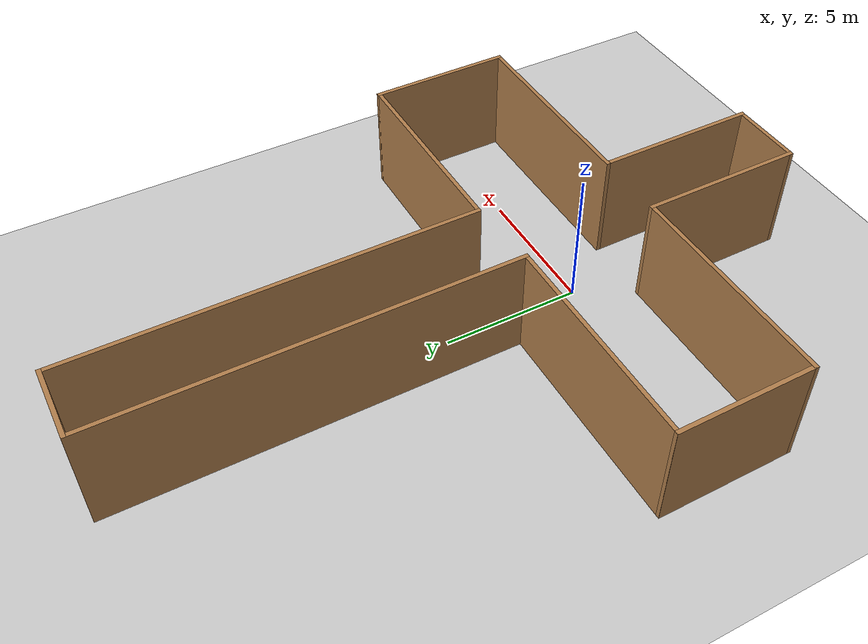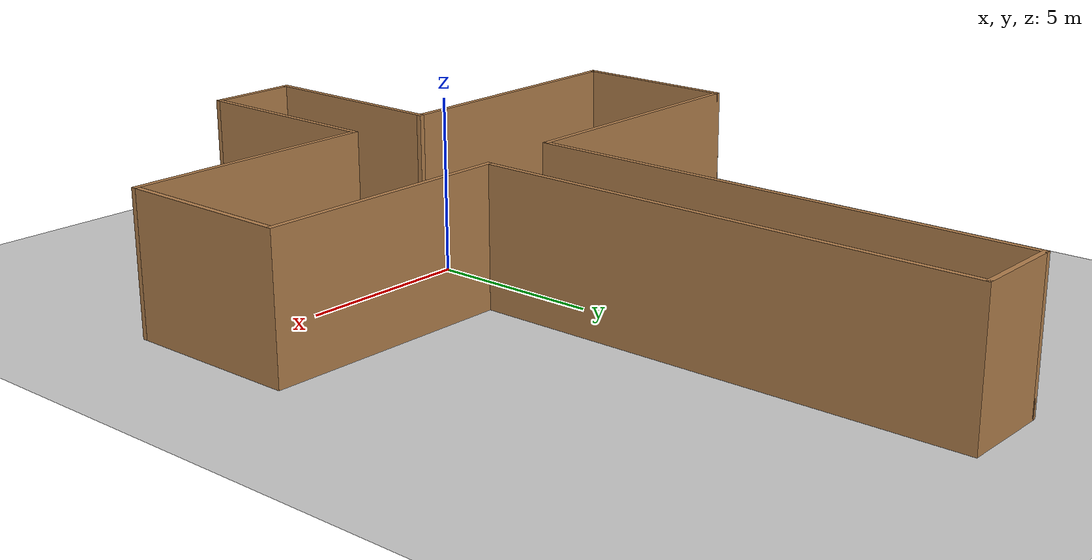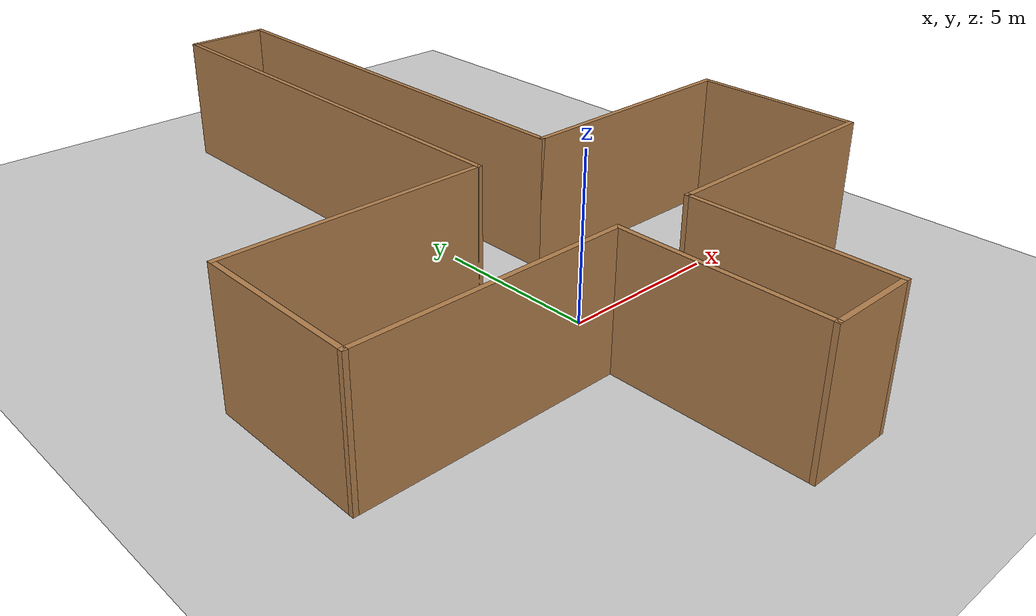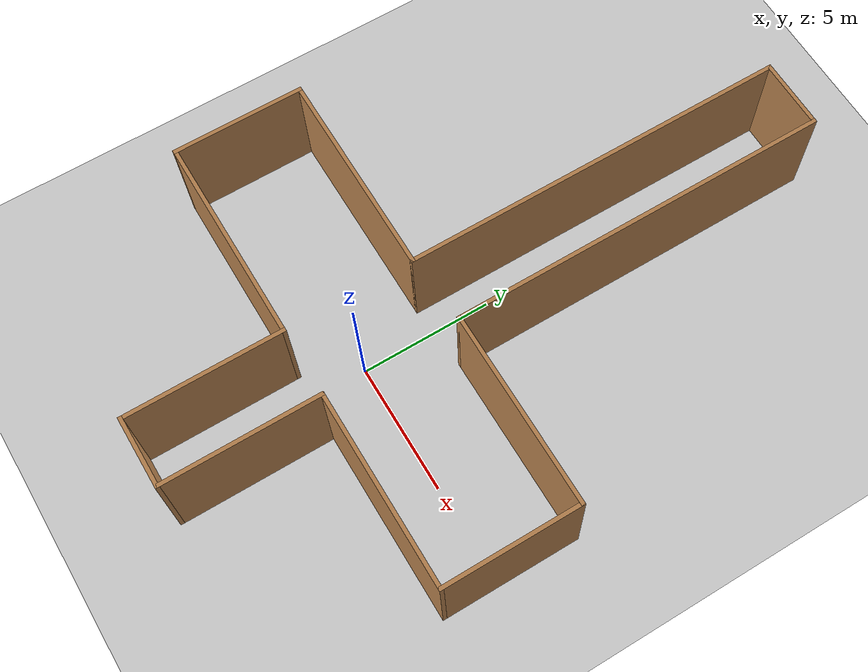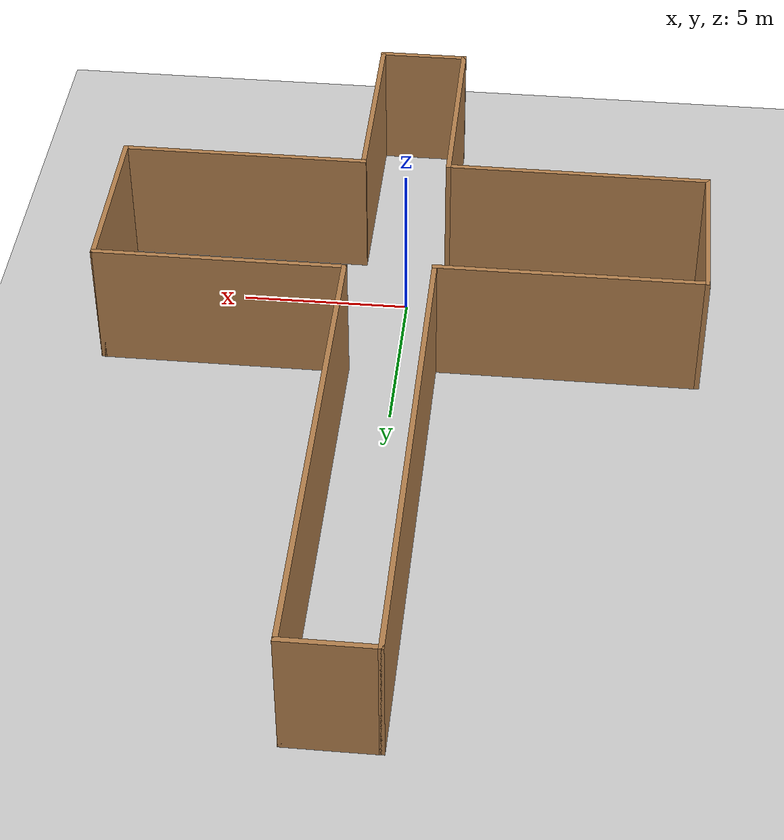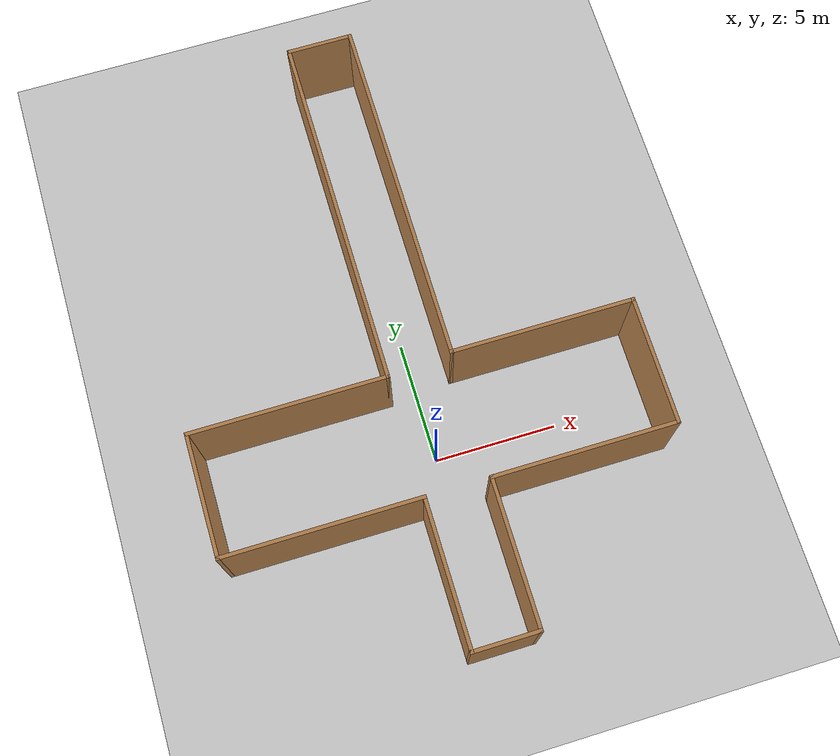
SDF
<sdf version="1.7">
 <world name="default">
  <plugin name="gazebo_ros_state" filename="libgazebo_ros_state.so">
   <ros>
    <namespace>/plug</namespace>
    <argument>model_states:=model_states_plug</argument>
    <argument>link_states:=link_states_plug</argument>
   </ros>
   <update_rate>100.0</update_rate>
  </plugin>
  <plugin name="disable_physics" filename="libdisable_physics.so"/>
  <light name="sun" type="directional">
   <pose>0 0 10 0 -0 0</pose>
   <diffuse>0.8 0.8 0.8 1</diffuse>
   <specular>0.2 0.2 0.2 1</specular>
   <attenuation>
    <range>1000</range>
    <constant>0.9</constant>
    <linear>0.01</linear>
    <quadratic>0.001</quadratic>
   </attenuation>
   <direction>-0.5 0.1 -0.9</direction>
   <spot><inner_angle>0</inner_angle><outer_angle>0</outer_angle><falloff>0</falloff></spot>
  </light>
  <model name="ground_plane">
   <static>1</static>
   <link name="link">
    <collision name="collision">
     <geometry><plane><normal>0 0 1</normal><size>100 100</size></plane></geometry>
     <surface>
      <contact><collide_bitmask>65535</collide_bitmask></contact>
      <friction><ode><mu>100</mu><mu2>50</mu2></ode></friction>
     </surface>
    </collision>
    <visual name="visual">
     <cast_shadows>0</cast_shadows>
     <geometry><plane><normal>0 0 1</normal><size>100 100</size></plane></geometry>
     <material>
      <script><uri>file://media/materials/scripts/gazebo.material</uri><name>Gazebo/Grey</name></script>
     </material>
    </visual>
   </link>
  </model>
  <gravity>0 0 -9.8</gravity>
  <magnetic_field>6e-06 2.3e-05 -4.2e-05</magnetic_field>
  <atmosphere type="adiabatic"/>
  <physics type="ode">
   <max_step_size>0.01</max_step_size>
   <real_time_factor>1</real_time_factor>
   <real_time_update_rate>100</real_time_update_rate>
  </physics>
  <scene><ambient>0.4 0.4 0.4 1</ambient><background>0.7 0.7 0.7 1</background><shadows>1</shadows></scene>
  <audio><device>default</device></audio>
  <spherical_coordinates>
   <surface_model>EARTH_WGS84</surface_model>
   <latitude_deg>0</latitude_deg>
   <longitude_deg>0</longitude_deg>
   <elevation>0</elevation>
   <heading_deg>0</heading_deg>
  </spherical_coordinates>
  <model name="static_uncertainty_test_wall2">
   <link name="Wall_0">
    <pose>-1.05 -9.725 0 0 -0 1.5708</pose>
    <inertial>
     <mass>1</mass>
     <inertia><ixx>1</ixx><ixy>0</ixy><ixz>0</ixz><iyy>1</iyy><iyz>0</iyz><izz>1</izz></inertia>
    </inertial>
    <visual name="Wall_0_Visual">
     <pose>0 0 1.25 0 -0 0</pose>
     <geometry><box><size>6 0.15 5.5</size></box></geometry>
     <material>
      <script><uri>file://media/materials/scripts/gazebo.material</uri><name>Gazebo/Wood</name></script>
      <ambient>1 1 1 1</ambient>
      <shader type="pixel"><normal_map>__default__</normal_map></shader>
      <diffuse>1 1 1 1</diffuse>
      <specular>0.2 0.2 0.2 1</specular>
      <emissive>0 0 0 1</emissive>
     </material>
     <meta><layer>0</layer></meta>
    </visual>
    <collision name="Wall_0_Collision">
     <pose>0 0 1.25 0 -0 0</pose>
     <geometry><box><size>6 0.15 5.5</size></box></geometry>
     <surface>
      <friction>
       <ode><mu>1</mu><mu2>1</mu2><fdir1>0 0 0</fdir1><slip1>0</slip1><slip2>0</slip2></ode>
       <torsional>
        <coefficient>1</coefficient>
        <patch_radius>0</patch_radius>
        <surface_radius>0</surface_radius>
        <use_patch_radius>1</use_patch_radius>
        <ode><slip>0</slip></ode>
       </torsional>
      </friction>
      <bounce><restitution_coefficient>0</restitution_coefficient><threshold>1e+06</threshold></bounce>
      <contact>
       <collide_without_contact>0</collide_without_contact>
       <collide_without_contact_bitmask>1</collide_without_contact_bitmask>
       <collide_bitmask>1</collide_bitmask>
       <ode>
        <soft_cfm>0</soft_cfm>
        <soft_erp>0.2</soft_erp>
        <kp>1e+13</kp>
        <kd>1</kd>
        <max_vel>0.01</max_vel>
        <min_depth>0</min_depth>
       </ode>
       <bullet>
        <split_impulse>1</split_impulse>
        <split_impulse_penetration_threshold>-0.01</split_impulse_penetration_threshold>
        <soft_cfm>0</soft_cfm>
        <soft_erp>0.2</soft_erp>
        <kp>1e+13</kp>
        <kd>1</kd>
       </bullet>
      </contact>
     </surface>
    </collision>
   </link>
   <link name="Wall_1">
    <pose>-4.975 -6.8 0 0 -0 3.14159</pose>
    <inertial>
     <mass>1</mass>
     <inertia><ixx>1</ixx><ixy>0</ixy><ixz>0</ixz><iyy>1</iyy><iyz>0</iyz><izz>1</izz></inertia>
    </inertial>
    <visual name="Wall_1_Visual">
     <pose>0 0 1.25 0 -0 0</pose>
     <geometry><box><size>8 0.15 5.5</size></box></geometry>
     <material>
      <script><uri>file://media/materials/scripts/gazebo.material</uri><name>Gazebo/Wood</name></script>
      <ambient>1 1 1 1</ambient>
      <shader type="pixel"><normal_map>__default__</normal_map></shader>
      <diffuse>1 1 1 1</diffuse>
      <specular>0.2 0.2 0.2 1</specular>
      <emissive>0 0 0 1</emissive>
     </material>
     <meta><layer>0</layer></meta>
    </visual>
    <collision name="Wall_1_Collision">
     <pose>0 0 1.25 0 -0 0</pose>
     <geometry><box><size>8 0.15 5.5</size></box></geometry>
     <surface>
      <friction>
       <ode><mu>1</mu><mu2>1</mu2><fdir1>0 0 0</fdir1><slip1>0</slip1><slip2>0</slip2></ode>
       <torsional>
        <coefficient>1</coefficient>
        <patch_radius>0</patch_radius>
        <surface_radius>0</surface_radius>
        <use_patch_radius>1</use_patch_radius>
        <ode><slip>0</slip></ode>
       </torsional>
      </friction>
      <bounce><restitution_coefficient>0</restitution_coefficient><threshold>1e+06</threshold></bounce>
      <contact>
       <collide_without_contact>0</collide_without_contact>
       <collide_without_contact_bitmask>1</collide_without_contact_bitmask>
       <collide_bitmask>1</collide_bitmask>
       <ode>
        <soft_cfm>0</soft_cfm>
        <soft_erp>0.2</soft_erp>
        <kp>1e+13</kp>
        <kd>1</kd>
        <max_vel>0.01</max_vel>
        <min_depth>0</min_depth>
       </ode>
       <bullet>
        <split_impulse>1</split_impulse>
        <split_impulse_penetration_threshold>-0.01</split_impulse_penetration_threshold>
        <soft_cfm>0</soft_cfm>
        <soft_erp>0.2</soft_erp>
        <kp>1e+13</kp>
        <kd>1</kd>
       </bullet>
      </contact>
     </surface>
    </collision>
   </link>
   <link name="Wall_10">
    <pose>1.55 -9.725 0 0 0 -1.5708</pose>
    <inertial>
     <mass>1</mass>
     <inertia><ixx>1</ixx><ixy>0</ixy><ixz>0</ixz><iyy>1</iyy><iyz>0</iyz><izz>1</izz></inertia>
    </inertial>
    <visual name="Wall_10_Visual">
     <pose>0 0 1.25 0 -0 0</pose>
     <geometry><box><size>6 0.15 5.5</size></box></geometry>
     <material>
      <script><uri>file://media/materials/scripts/gazebo.material</uri><name>Gazebo/Wood</name></script>
      <ambient>1 1 1 1</ambient>
      <shader type="pixel"><normal_map>__default__</normal_map></shader>
      <diffuse>1 1 1 1</diffuse>
      <specular>0.2 0.2 0.2 1</specular>
      <emissive>0 0 0 1</emissive>
     </material>
     <meta><layer>0</layer></meta>
    </visual>
    <collision name="Wall_10_Collision">
     <pose>0 0 1.25 0 -0 0</pose>
     <geometry><box><size>6 0.15 5.5</size></box></geometry>
     <surface>
      <friction>
       <ode><mu>1</mu><mu2>1</mu2><fdir1>0 0 0</fdir1><slip1>0</slip1><slip2>0</slip2></ode>
       <torsional>
        <coefficient>1</coefficient>
        <patch_radius>0</patch_radius>
        <surface_radius>0</surface_radius>
        <use_patch_radius>1</use_patch_radius>
        <ode><slip>0</slip></ode>
       </torsional>
      </friction>
      <bounce><restitution_coefficient>0</restitution_coefficient><threshold>1e+06</threshold></bounce>
      <contact>
       <collide_without_contact>0</collide_without_contact>
       <collide_without_contact_bitmask>1</collide_without_contact_bitmask>
       <collide_bitmask>1</collide_bitmask>
       <ode>
        <soft_cfm>0</soft_cfm>
        <soft_erp>0.2</soft_erp>
        <kp>1e+13</kp>
        <kd>1</kd>
        <max_vel>0.01</max_vel>
        <min_depth>0</min_depth>
       </ode>
       <bullet>
        <split_impulse>1</split_impulse>
        <split_impulse_penetration_threshold>-0.01</split_impulse_penetration_threshold>
        <soft_cfm>0</soft_cfm>
        <soft_erp>0.2</soft_erp>
        <kp>1e+13</kp>
        <kd>1</kd>
       </bullet>
      </contact>
     </surface>
    </collision>
   </link>
   <link name="Wall_11">
    <pose>0.25 -12.65 0 0 0 -3.14159</pose>
    <inertial>
     <mass>1</mass>
     <inertia><ixx>1</ixx><ixy>0</ixy><ixz>0</ixz><iyy>1</iyy><iyz>0</iyz><izz>1</izz></inertia>
    </inertial>
    <visual name="Wall_11_Visual">
     <pose>0 0 1.25 0 -0 0</pose>
     <geometry><box><size>2.75 0.15 5.5</size></box></geometry>
     <material>
      <script><uri>file://media/materials/scripts/gazebo.material</uri><name>Gazebo/Wood</name></script>
      <ambient>1 1 1 1</ambient>
      <shader type="pixel"><normal_map>__default__</normal_map></shader>
      <diffuse>1 1 1 1</diffuse>
      <specular>0.2 0.2 0.2 1</specular>
      <emissive>0 0 0 1</emissive>
     </material>
     <meta><layer>0</layer></meta>
    </visual>
    <collision name="Wall_11_Collision">
     <pose>0 0 1.25 0 -0 0</pose>
     <geometry><box><size>2.75 0.15 5.5</size></box></geometry>
     <surface>
      <friction>
       <ode><mu>1</mu><mu2>1</mu2><fdir1>0 0 0</fdir1><slip1>0</slip1><slip2>0</slip2></ode>
       <torsional>
        <coefficient>1</coefficient>
        <patch_radius>0</patch_radius>
        <surface_radius>0</surface_radius>
        <use_patch_radius>1</use_patch_radius>
        <ode><slip>0</slip></ode>
       </torsional>
      </friction>
      <bounce><restitution_coefficient>0</restitution_coefficient><threshold>1e+06</threshold></bounce>
      <contact>
       <collide_without_contact>0</collide_without_contact>
       <collide_without_contact_bitmask>1</collide_without_contact_bitmask>
       <collide_bitmask>1</collide_bitmask>
       <ode>
        <soft_cfm>0</soft_cfm>
        <soft_erp>0.2</soft_erp>
        <kp>1e+13</kp>
        <kd>1</kd>
        <max_vel>0.01</max_vel>
        <min_depth>0</min_depth>
       </ode>
       <bullet>
        <split_impulse>1</split_impulse>
        <split_impulse_penetration_threshold>-0.01</split_impulse_penetration_threshold>
        <soft_cfm>0</soft_cfm>
        <soft_erp>0.2</soft_erp>
        <kp>1e+13</kp>
        <kd>1</kd>
       </bullet>
      </contact>
     </surface>
    </collision>
   </link>
   <link name="Wall_2">
    <pose>-8.9 -4.375 0 0 -0 1.5708</pose>
    <inertial>
     <mass>1</mass>
     <inertia><ixx>1</ixx><ixy>0</ixy><ixz>0</ixz><iyy>1</iyy><iyz>0</iyz><izz>1</izz></inertia>
    </inertial>
    <visual name="Wall_2_Visual">
     <pose>0 0 1.25 0 -0 0</pose>
     <geometry><box><size>5 0.15 5.5</size></box></geometry>
     <material>
      <script><uri>file://media/materials/scripts/gazebo.material</uri><name>Gazebo/Wood</name></script>
      <ambient>1 1 1 1</ambient>
      <shader type="pixel"><normal_map>__default__</normal_map></shader>
      <diffuse>1 1 1 1</diffuse>
      <specular>0.2 0.2 0.2 1</specular>
      <emissive>0 0 0 1</emissive>
     </material>
     <meta><layer>0</layer></meta>
    </visual>
    <collision name="Wall_2_Collision">
     <pose>0 0 1.25 0 -0 0</pose>
     <geometry><box><size>5 0.15 5.5</size></box></geometry>
     <surface>
      <friction>
       <ode><mu>1</mu><mu2>1</mu2><fdir1>0 0 0</fdir1><slip1>0</slip1><slip2>0</slip2></ode>
       <torsional>
        <coefficient>1</coefficient>
        <patch_radius>0</patch_radius>
        <surface_radius>0</surface_radius>
        <use_patch_radius>1</use_patch_radius>
        <ode><slip>0</slip></ode>
       </torsional>
      </friction>
      <bounce><restitution_coefficient>0</restitution_coefficient><threshold>1e+06</threshold></bounce>
      <contact>
       <collide_without_contact>0</collide_without_contact>
       <collide_without_contact_bitmask>1</collide_without_contact_bitmask>
       <collide_bitmask>1</collide_bitmask>
       <ode>
        <soft_cfm>0</soft_cfm>
        <soft_erp>0.2</soft_erp>
        <kp>1e+13</kp>
        <kd>1</kd>
        <max_vel>0.01</max_vel>
        <min_depth>0</min_depth>
       </ode>
       <bullet>
        <split_impulse>1</split_impulse>
        <split_impulse_penetration_threshold>-0.01</split_impulse_penetration_threshold>
        <soft_cfm>0</soft_cfm>
        <soft_erp>0.2</soft_erp>
        <kp>1e+13</kp>
        <kd>1</kd>
       </bullet>
      </contact>
     </surface>
    </collision>
   </link>
   <link name="Wall_3">
    <pose>-4.975 -1.95 0 0 -0 0</pose>
    <inertial>
     <mass>1</mass>
     <inertia><ixx>1</ixx><ixy>0</ixy><ixz>0</ixz><iyy>1</iyy><iyz>0</iyz><izz>1</izz></inertia>
    </inertial>
    <visual name="Wall_3_Visual">
     <pose>0 0 1.25 0 -0 0</pose>
     <geometry><box><size>8 0.15 5.5</size></box></geometry>
     <material>
      <script><uri>file://media/materials/scripts/gazebo.material</uri><name>Gazebo/Wood</name></script>
      <ambient>1 1 1 1</ambient>
      <shader type="pixel"><normal_map>__default__</normal_map></shader>
      <diffuse>1 1 1 1</diffuse>
      <specular>0.2 0.2 0.2 1</specular>
      <emissive>0 0 0 1</emissive>
     </material>
     <meta><layer>0</layer></meta>
    </visual>
    <collision name="Wall_3_Collision">
     <pose>0 0 1.25 0 -0 0</pose>
     <geometry><box><size>8 0.15 5.5</size></box></geometry>
     <surface>
      <friction>
       <ode><mu>1</mu><mu2>1</mu2><fdir1>0 0 0</fdir1><slip1>0</slip1><slip2>0</slip2></ode>
       <torsional>
        <coefficient>1</coefficient>
        <patch_radius>0</patch_radius>
        <surface_radius>0</surface_radius>
        <use_patch_radius>1</use_patch_radius>
        <ode><slip>0</slip></ode>
       </torsional>
      </friction>
      <bounce><restitution_coefficient>0</restitution_coefficient><threshold>1e+06</threshold></bounce>
      <contact>
       <collide_without_contact>0</collide_without_contact>
       <collide_without_contact_bitmask>1</collide_without_contact_bitmask>
       <collide_bitmask>1</collide_bitmask>
       <ode>
        <soft_cfm>0</soft_cfm>
        <soft_erp>0.2</soft_erp>
        <kp>1e+13</kp>
        <kd>1</kd>
        <max_vel>0.01</max_vel>
        <min_depth>0</min_depth>
       </ode>
       <bullet>
        <split_impulse>1</split_impulse>
        <split_impulse_penetration_threshold>-0.01</split_impulse_penetration_threshold>
        <soft_cfm>0</soft_cfm>
        <soft_erp>0.2</soft_erp>
        <kp>1e+13</kp>
        <kd>1</kd>
       </bullet>
      </contact>
     </surface>
    </collision>
   </link>
   <link name="Wall_4">
    <pose>-1.05 5.35 0 0 -0 1.5708</pose>
    <inertial>
     <mass>1</mass>
     <inertia><ixx>1</ixx><ixy>0</ixy><ixz>0</ixz><iyy>1</iyy><iyz>0</iyz><izz>1</izz></inertia>
    </inertial>
    <visual name="Wall_4_Visual">
     <pose>0 0 1.25 0 -0 0</pose>
     <geometry><box><size>14.75 0.15 5.5</size></box></geometry>
     <material>
      <script><uri>file://media/materials/scripts/gazebo.material</uri><name>Gazebo/Wood</name></script>
      <ambient>1 1 1 1</ambient>
      <shader type="pixel"><normal_map>__default__</normal_map></shader>
      <diffuse>1 1 1 1</diffuse>
      <specular>0.2 0.2 0.2 1</specular>
      <emissive>0 0 0 1</emissive>
     </material>
     <meta><layer>0</layer></meta>
    </visual>
    <collision name="Wall_4_Collision">
     <pose>0 0 1.25 0 -0 0</pose>
     <geometry><box><size>14.75 0.15 5.5</size></box></geometry>
     <surface>
      <friction>
       <ode><mu>1</mu><mu2>1</mu2><fdir1>0 0 0</fdir1><slip1>0</slip1><slip2>0</slip2></ode>
       <torsional>
        <coefficient>1</coefficient>
        <patch_radius>0</patch_radius>
        <surface_radius>0</surface_radius>
        <use_patch_radius>1</use_patch_radius>
        <ode><slip>0</slip></ode>
       </torsional>
      </friction>
      <bounce><restitution_coefficient>0</restitution_coefficient><threshold>1e+06</threshold></bounce>
      <contact>
       <collide_without_contact>0</collide_without_contact>
       <collide_without_contact_bitmask>1</collide_without_contact_bitmask>
       <collide_bitmask>1</collide_bitmask>
       <ode>
        <soft_cfm>0</soft_cfm>
        <soft_erp>0.2</soft_erp>
        <kp>1e+13</kp>
        <kd>1</kd>
        <max_vel>0.01</max_vel>
        <min_depth>0</min_depth>
       </ode>
       <bullet>
        <split_impulse>1</split_impulse>
        <split_impulse_penetration_threshold>-0.01</split_impulse_penetration_threshold>
        <soft_cfm>0</soft_cfm>
        <soft_erp>0.2</soft_erp>
        <kp>1e+13</kp>
        <kd>1</kd>
       </bullet>
      </contact>
     </surface>
    </collision>
   </link>
   <link name="Wall_5">
    <pose>0.25 12.65 0 0 -0 0</pose>
    <inertial>
     <mass>1</mass>
     <inertia><ixx>1</ixx><ixy>0</ixy><ixz>0</ixz><iyy>1</iyy><iyz>0</iyz><izz>1</izz></inertia>
    </inertial>
    <visual name="Wall_5_Visual">
     <pose>0 0 1.25 0 -0 0</pose>
     <geometry><box><size>2.75 0.15 5.5</size></box></geometry>
     <material>
      <script><uri>file://media/materials/scripts/gazebo.material</uri><name>Gazebo/Wood</name></script>
      <ambient>1 1 1 1</ambient>
      <shader type="pixel"><normal_map>__default__</normal_map></shader>
      <diffuse>1 1 1 1</diffuse>
      <specular>0.2 0.2 0.2 1</specular>
      <emissive>0 0 0 1</emissive>
     </material>
     <meta><layer>0</layer></meta>
    </visual>
    <collision name="Wall_5_Collision">
     <pose>0 0 1.25 0 -0 0</pose>
     <geometry><box><size>2.75 0.15 5.5</size></box></geometry>
     <surface>
      <friction>
       <ode><mu>1</mu><mu2>1</mu2><fdir1>0 0 0</fdir1><slip1>0</slip1><slip2>0</slip2></ode>
       <torsional>
        <coefficient>1</coefficient>
        <patch_radius>0</patch_radius>
        <surface_radius>0</surface_radius>
        <use_patch_radius>1</use_patch_radius>
        <ode><slip>0</slip></ode>
       </torsional>
      </friction>
      <bounce><restitution_coefficient>0</restitution_coefficient><threshold>1e+06</threshold></bounce>
      <contact>
       <collide_without_contact>0</collide_without_contact>
       <collide_without_contact_bitmask>1</collide_without_contact_bitmask>
       <collide_bitmask>1</collide_bitmask>
       <ode>
        <soft_cfm>0</soft_cfm>
        <soft_erp>0.2</soft_erp>
        <kp>1e+13</kp>
        <kd>1</kd>
        <max_vel>0.01</max_vel>
        <min_depth>0</min_depth>
       </ode>
       <bullet>
        <split_impulse>1</split_impulse>
        <split_impulse_penetration_threshold>-0.01</split_impulse_penetration_threshold>
        <soft_cfm>0</soft_cfm>
        <soft_erp>0.2</soft_erp>
        <kp>1e+13</kp>
        <kd>1</kd>
       </bullet>
      </contact>
     </surface>
    </collision>
   </link>
   <link name="Wall_6">
    <pose>1.55 5.475 0 0 0 -1.5708</pose>
    <inertial>
     <mass>1</mass>
     <inertia><ixx>1</ixx><ixy>0</ixy><ixz>0</ixz><iyy>1</iyy><iyz>0</iyz><izz>1</izz></inertia>
    </inertial>
    <visual name="Wall_6_Visual">
     <pose>0 0 1.25 0 -0 0</pose>
     <geometry><box><size>14.5 0.15 5.5</size></box></geometry>
     <material>
      <script><uri>file://media/materials/scripts/gazebo.material</uri><name>Gazebo/Wood</name></script>
      <ambient>1 1 1 1</ambient>
      <shader type="pixel"><normal_map>__default__</normal_map></shader>
      <diffuse>1 1 1 1</diffuse>
      <specular>0.2 0.2 0.2 1</specular>
      <emissive>0 0 0 1</emissive>
     </material>
     <meta><layer>0</layer></meta>
    </visual>
    <collision name="Wall_6_Collision">
     <pose>0 0 1.25 0 -0 0</pose>
     <geometry><box><size>14.5 0.15 5.5</size></box></geometry>
     <surface>
      <friction>
       <ode><mu>1</mu><mu2>1</mu2><fdir1>0 0 0</fdir1><slip1>0</slip1><slip2>0</slip2></ode>
       <torsional>
        <coefficient>1</coefficient>
        <patch_radius>0</patch_radius>
        <surface_radius>0</surface_radius>
        <use_patch_radius>1</use_patch_radius>
        <ode><slip>0</slip></ode>
       </torsional>
      </friction>
      <bounce><restitution_coefficient>0</restitution_coefficient><threshold>1e+06</threshold></bounce>
      <contact>
       <collide_without_contact>0</collide_without_contact>
       <collide_without_contact_bitmask>1</collide_without_contact_bitmask>
       <collide_bitmask>1</collide_bitmask>
       <ode>
        <soft_cfm>0</soft_cfm>
        <soft_erp>0.2</soft_erp>
        <kp>1e+13</kp>
        <kd>1</kd>
        <max_vel>0.01</max_vel>
        <min_depth>0</min_depth>
       </ode>
       <bullet>
        <split_impulse>1</split_impulse>
        <split_impulse_penetration_threshold>-0.01</split_impulse_penetration_threshold>
        <soft_cfm>0</soft_cfm>
        <soft_erp>0.2</soft_erp>
        <kp>1e+13</kp>
        <kd>1</kd>
       </bullet>
      </contact>
     </surface>
    </collision>
   </link>
   <link name="Wall_7">
    <pose>5.225 -1.7 0 0 -0 0</pose>
    <inertial>
     <mass>1</mass>
     <inertia><ixx>1</ixx><ixy>0</ixy><ixz>0</ixz><iyy>1</iyy><iyz>0</iyz><izz>1</izz></inertia>
    </inertial>
    <visual name="Wall_7_Visual">
     <pose>0 0 1.25 0 -0 0</pose>
     <geometry><box><size>7.5 0.15 5.5</size></box></geometry>
     <material>
      <script><uri>file://media/materials/scripts/gazebo.material</uri><name>Gazebo/Wood</name></script>
      <ambient>1 1 1 1</ambient>
      <shader type="pixel"><normal_map>__default__</normal_map></shader>
      <diffuse>1 1 1 1</diffuse>
      <specular>0.2 0.2 0.2 1</specular>
      <emissive>0 0 0 1</emissive>
     </material>
     <meta><layer>0</layer></meta>
    </visual>
    <collision name="Wall_7_Collision">
     <pose>0 0 1.25 0 -0 0</pose>
     <geometry><box><size>7.5 0.15 5.5</size></box></geometry>
     <surface>
      <friction>
       <ode><mu>1</mu><mu2>1</mu2><fdir1>0 0 0</fdir1><slip1>0</slip1><slip2>0</slip2></ode>
       <torsional>
        <coefficient>1</coefficient>
        <patch_radius>0</patch_radius>
        <surface_radius>0</surface_radius>
        <use_patch_radius>1</use_patch_radius>
        <ode><slip>0</slip></ode>
       </torsional>
      </friction>
      <bounce><restitution_coefficient>0</restitution_coefficient><threshold>1e+06</threshold></bounce>
      <contact>
       <collide_without_contact>0</collide_without_contact>
       <collide_without_contact_bitmask>1</collide_without_contact_bitmask>
       <collide_bitmask>1</collide_bitmask>
       <ode>
        <soft_cfm>0</soft_cfm>
        <soft_erp>0.2</soft_erp>
        <kp>1e+13</kp>
        <kd>1</kd>
        <max_vel>0.01</max_vel>
        <min_depth>0</min_depth>
       </ode>
       <bullet>
        <split_impulse>1</split_impulse>
        <split_impulse_penetration_threshold>-0.01</split_impulse_penetration_threshold>
        <soft_cfm>0</soft_cfm>
        <soft_erp>0.2</soft_erp>
        <kp>1e+13</kp>
        <kd>1</kd>
       </bullet>
      </contact>
     </surface>
    </collision>
   </link>
   <link name="Wall_8">
    <pose>8.9 -4.25 0 0 0 -1.5708</pose>
    <inertial>
     <mass>1</mass>
     <inertia><ixx>1</ixx><ixy>0</ixy><ixz>0</ixz><iyy>1</iyy><iyz>0</iyz><izz>1</izz></inertia>
    </inertial>
    <visual name="Wall_8_Visual">
     <pose>0 0 1.25 0 -0 0</pose>
     <geometry><box><size>5.25 0.15 5.5</size></box></geometry>
     <material>
      <script><uri>file://media/materials/scripts/gazebo.material</uri><name>Gazebo/Wood</name></script>
      <ambient>1 1 1 1</ambient>
      <shader type="pixel"><normal_map>__default__</normal_map></shader>
      <diffuse>1 1 1 1</diffuse>
      <specular>0.2 0.2 0.2 1</specular>
      <emissive>0 0 0 1</emissive>
     </material>
     <meta><layer>0</layer></meta>
    </visual>
    <collision name="Wall_8_Collision">
     <pose>0 0 1.25 0 -0 0</pose>
     <geometry><box><size>5.25 0.15 5.5</size></box></geometry>
     <surface>
      <friction>
       <ode><mu>1</mu><mu2>1</mu2><fdir1>0 0 0</fdir1><slip1>0</slip1><slip2>0</slip2></ode>
       <torsional>
        <coefficient>1</coefficient>
        <patch_radius>0</patch_radius>
        <surface_radius>0</surface_radius>
        <use_patch_radius>1</use_patch_radius>
        <ode><slip>0</slip></ode>
       </torsional>
      </friction>
      <bounce><restitution_coefficient>0</restitution_coefficient><threshold>1e+06</threshold></bounce>
      <contact>
       <collide_without_contact>0</collide_without_contact>
       <collide_without_contact_bitmask>1</collide_without_contact_bitmask>
       <collide_bitmask>1</collide_bitmask>
       <ode>
        <soft_cfm>0</soft_cfm>
        <soft_erp>0.2</soft_erp>
        <kp>1e+13</kp>
        <kd>1</kd>
        <max_vel>0.01</max_vel>
        <min_depth>0</min_depth>
       </ode>
       <bullet>
        <split_impulse>1</split_impulse>
        <split_impulse_penetration_threshold>-0.01</split_impulse_penetration_threshold>
        <soft_cfm>0</soft_cfm>
        <soft_erp>0.2</soft_erp>
        <kp>1e+13</kp>
        <kd>1</kd>
       </bullet>
      </contact>
     </surface>
    </collision>
   </link>
   <link name="Wall_9">
    <pose>5.225 -6.8 0 0 -0 3.14159</pose>
    <inertial>
     <mass>1</mass>
     <inertia><ixx>1</ixx><ixy>0</ixy><ixz>0</ixz><iyy>1</iyy><iyz>0</iyz><izz>1</izz></inertia>
    </inertial>
    <visual name="Wall_9_Visual">
     <pose>0 0 1.25 0 -0 0</pose>
     <geometry><box><size>7.5 0.15 5.5</size></box></geometry>
     <material>
      <script><uri>file://media/materials/scripts/gazebo.material</uri><name>Gazebo/Wood</name></script>
      <ambient>1 1 1 1</ambient>
      <shader type="pixel"><normal_map>__default__</normal_map></shader>
      <diffuse>1 1 1 1</diffuse>
      <specular>0.2 0.2 0.2 1</specular>
      <emissive>0 0 0 1</emissive>
     </material>
     <meta><layer>0</layer></meta>
    </visual>
    <collision name="Wall_9_Collision">
     <pose>0 0 1.25 0 -0 0</pose>
     <geometry><box><size>7.5 0.15 5.5</size></box></geometry>
     <surface>
      <friction>
       <ode><mu>1</mu><mu2>1</mu2><fdir1>0 0 0</fdir1><slip1>0</slip1><slip2>0</slip2></ode>
       <torsional>
        <coefficient>1</coefficient>
        <patch_radius>0</patch_radius>
        <surface_radius>0</surface_radius>
        <use_patch_radius>1</use_patch_radius>
        <ode><slip>0</slip></ode>
       </torsional>
      </friction>
      <bounce><restitution_coefficient>0</restitution_coefficient><threshold>1e+06</threshold></bounce>
      <contact>
       <collide_without_contact>0</collide_without_contact>
       <collide_without_contact_bitmask>1</collide_without_contact_bitmask>
       <collide_bitmask>1</collide_bitmask>
       <ode>
        <soft_cfm>0</soft_cfm>
        <soft_erp>0.2</soft_erp>
        <kp>1e+13</kp>
        <kd>1</kd>
        <max_vel>0.01</max_vel>
        <min_depth>0</min_depth>
       </ode>
       <bullet>
        <split_impulse>1</split_impulse>
        <split_impulse_penetration_threshold>-0.01</split_impulse_penetration_threshold>
        <soft_cfm>0</soft_cfm>
        <soft_erp>0.2</soft_erp>
        <kp>1e+13</kp>
        <kd>1</kd>
       </bullet>
      </contact>
     </surface>
    </collision>
   </link>
   <static>1</static>
   <pose>-0.039147 4.73 0 0 -0 0</pose>
  </model>
 </world>
</sdf>
